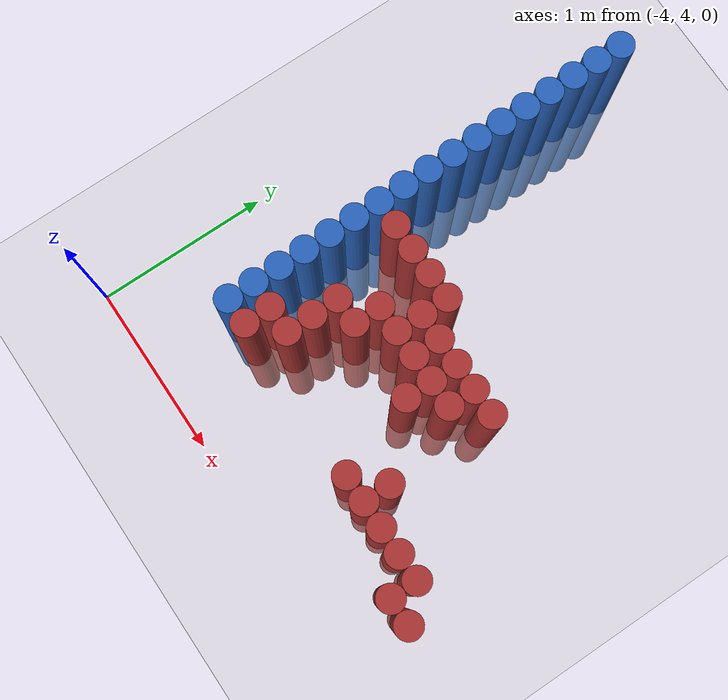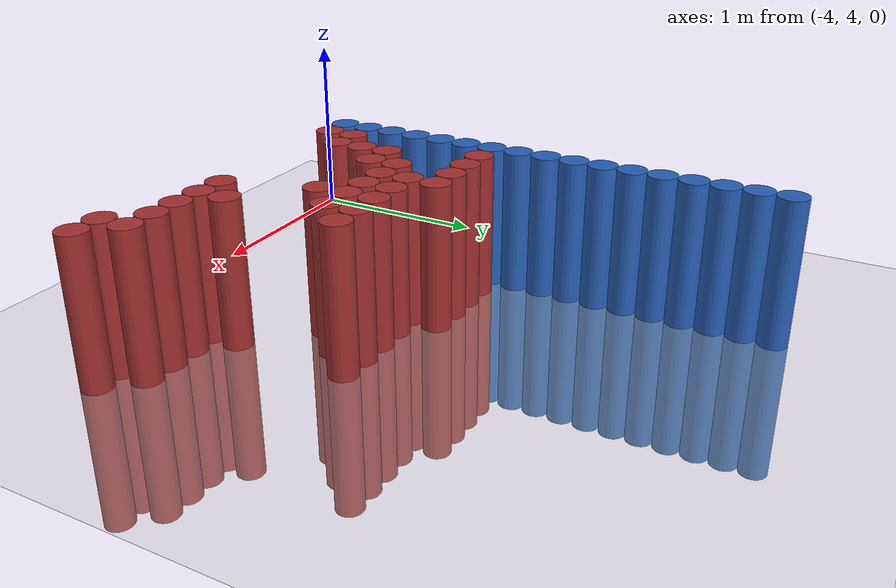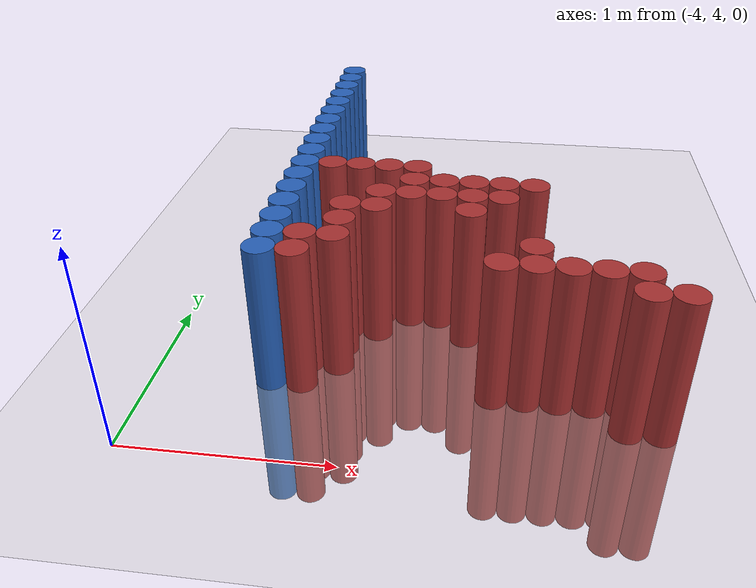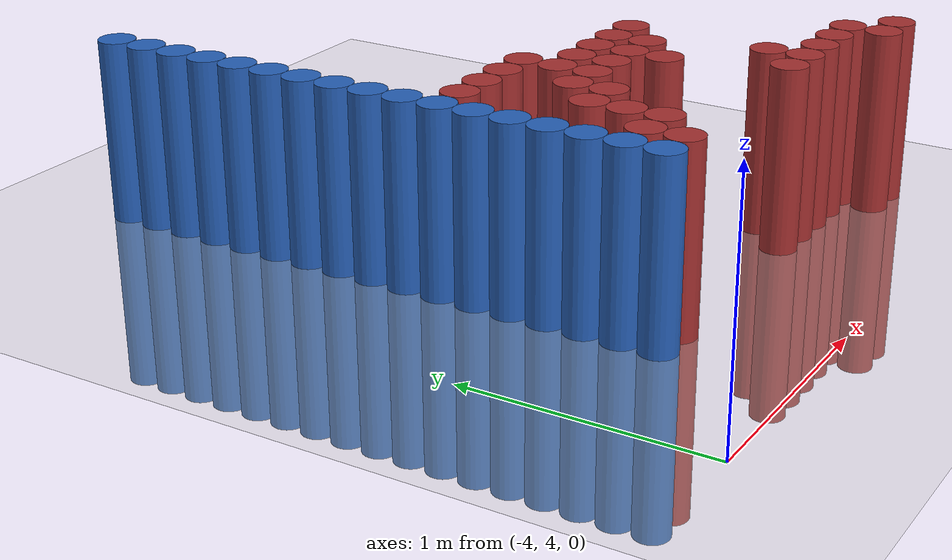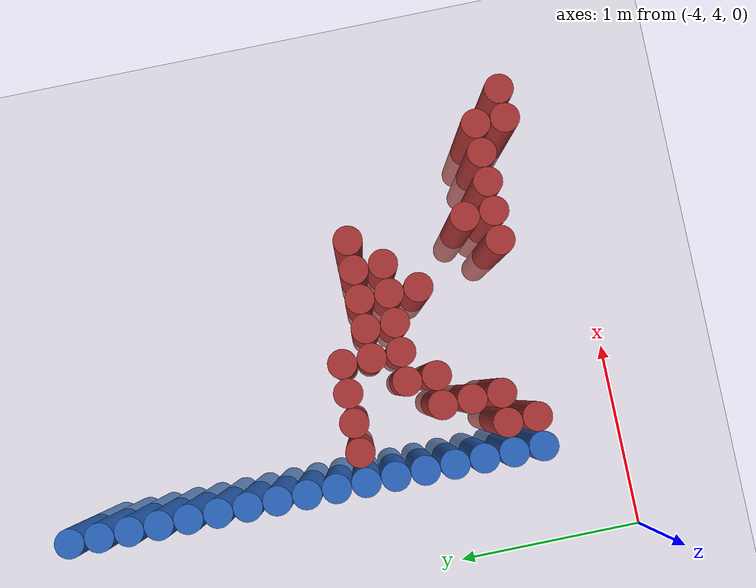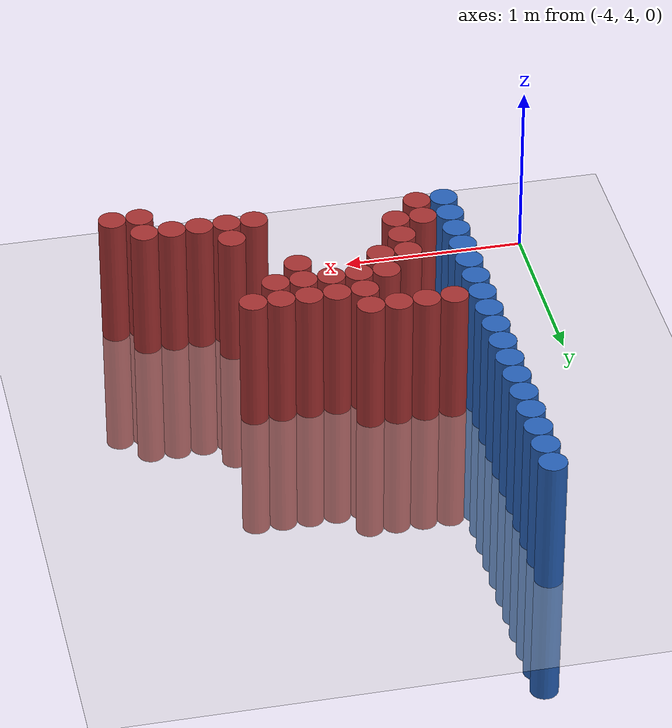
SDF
<sdf version="1.6">
 <world name="default">
  <model name="ground_plane">
   <static>1</static>
   <link name="link">
    <collision name="collision">
     <geometry><plane><normal>0 0 1</normal><size>100 100</size></plane></geometry>
     <surface><friction><ode><mu>100</mu><mu2>50</mu2></ode></friction></surface>
    </collision>
    <visual name="visual">
     <cast_shadows>0</cast_shadows>
     <geometry><plane><normal>0 0 1</normal><size>100 100</size></plane></geometry>
     <material>
      <script><uri>file://media/materials/scripts/gazebo.material</uri><name>Gazebo/Grey</name></script>
     </material>
    </visual>
   </link>
  </model>
  <model name="unit_cylinder_175">
   <static>1</static>
   <pose>-3.425000 4.525000 0.000000 0.000000 0.000000 0.000000</pose>
   <link name="link">
    <inertial>
     <mass>1</mass>
     <inertia><ixx>0.145833</ixx><ixy>0</ixy><ixz>0</ixz><iyy>0.145833</iyy><iyz>0</iyz><izz>0.125</izz></inertia>
    </inertial>
    <collision name="collision">
     <geometry><cylinder><radius>0.075000</radius><length>1.5</length></cylinder></geometry>
    </collision>
    <visual name="visual">
     <geometry><cylinder><radius>0.075000</radius><length>1.5</length></cylinder></geometry>
     <material>
      <ambient>0.152000 0.379000 0.720000 1</ambient>
      <diffuse>0.152000 0.379000 0.720000 1</diffuse>
     </material>
     <material>
      <script><name>Gazebo/Grey</name><uri>file://media/materials/scripts/gazebo.material</uri></script>
     </material>
    </visual>
   </link>
  </model>
  <model name="unit_cylinder_177">
   <static>1</static>
   <pose>-3.425000 4.675000 0.000000 0.000000 0.000000 0.000000</pose>
   <link name="link">
    <inertial>
     <mass>1</mass>
     <inertia><ixx>0.145833</ixx><ixy>0</ixy><ixz>0</ixz><iyy>0.145833</iyy><iyz>0</iyz><izz>0.125</izz></inertia>
    </inertial>
    <collision name="collision">
     <geometry><cylinder><radius>0.075000</radius><length>1.5</length></cylinder></geometry>
    </collision>
    <visual name="visual">
     <geometry><cylinder><radius>0.075000</radius><length>1.5</length></cylinder></geometry>
     <material>
      <ambient>0.152000 0.379000 0.720000 1</ambient>
      <diffuse>0.152000 0.379000 0.720000 1</diffuse>
     </material>
     <material>
      <script><name>Gazebo/Grey</name><uri>file://media/materials/scripts/gazebo.material</uri></script>
     </material>
    </visual>
   </link>
  </model>
  <model name="unit_cylinder_179">
   <static>1</static>
   <pose>-3.425000 4.825000 0.000000 0.000000 0.000000 0.000000</pose>
   <link name="link">
    <inertial>
     <mass>1</mass>
     <inertia><ixx>0.145833</ixx><ixy>0</ixy><ixz>0</ixz><iyy>0.145833</iyy><iyz>0</iyz><izz>0.125</izz></inertia>
    </inertial>
    <collision name="collision">
     <geometry><cylinder><radius>0.075000</radius><length>1.5</length></cylinder></geometry>
    </collision>
    <visual name="visual">
     <geometry><cylinder><radius>0.075000</radius><length>1.5</length></cylinder></geometry>
     <material>
      <ambient>0.152000 0.379000 0.720000 1</ambient>
      <diffuse>0.152000 0.379000 0.720000 1</diffuse>
     </material>
     <material>
      <script><name>Gazebo/Grey</name><uri>file://media/materials/scripts/gazebo.material</uri></script>
     </material>
    </visual>
   </link>
  </model>
  <model name="unit_cylinder_181">
   <static>1</static>
   <pose>-3.425000 4.975000 0.000000 0.000000 0.000000 0.000000</pose>
   <link name="link">
    <inertial>
     <mass>1</mass>
     <inertia><ixx>0.145833</ixx><ixy>0</ixy><ixz>0</ixz><iyy>0.145833</iyy><iyz>0</iyz><izz>0.125</izz></inertia>
    </inertial>
    <collision name="collision">
     <geometry><cylinder><radius>0.075000</radius><length>1.5</length></cylinder></geometry>
    </collision>
    <visual name="visual">
     <geometry><cylinder><radius>0.075000</radius><length>1.5</length></cylinder></geometry>
     <material>
      <ambient>0.152000 0.379000 0.720000 1</ambient>
      <diffuse>0.152000 0.379000 0.720000 1</diffuse>
     </material>
     <material>
      <script><name>Gazebo/Grey</name><uri>file://media/materials/scripts/gazebo.material</uri></script>
     </material>
    </visual>
   </link>
  </model>
  <model name="unit_cylinder_183">
   <static>1</static>
   <pose>-3.425000 5.125000 0.000000 0.000000 0.000000 0.000000</pose>
   <link name="link">
    <inertial>
     <mass>1</mass>
     <inertia><ixx>0.145833</ixx><ixy>0</ixy><ixz>0</ixz><iyy>0.145833</iyy><iyz>0</iyz><izz>0.125</izz></inertia>
    </inertial>
    <collision name="collision">
     <geometry><cylinder><radius>0.075000</radius><length>1.5</length></cylinder></geometry>
    </collision>
    <visual name="visual">
     <geometry><cylinder><radius>0.075000</radius><length>1.5</length></cylinder></geometry>
     <material>
      <ambient>0.152000 0.379000 0.720000 1</ambient>
      <diffuse>0.152000 0.379000 0.720000 1</diffuse>
     </material>
     <material>
      <script><name>Gazebo/Grey</name><uri>file://media/materials/scripts/gazebo.material</uri></script>
     </material>
    </visual>
   </link>
  </model>
  <model name="unit_cylinder_185">
   <static>1</static>
   <pose>-3.425000 5.275000 0.000000 0.000000 0.000000 0.000000</pose>
   <link name="link">
    <inertial>
     <mass>1</mass>
     <inertia><ixx>0.145833</ixx><ixy>0</ixy><ixz>0</ixz><iyy>0.145833</iyy><iyz>0</iyz><izz>0.125</izz></inertia>
    </inertial>
    <collision name="collision">
     <geometry><cylinder><radius>0.075000</radius><length>1.5</length></cylinder></geometry>
    </collision>
    <visual name="visual">
     <geometry><cylinder><radius>0.075000</radius><length>1.5</length></cylinder></geometry>
     <material>
      <ambient>0.152000 0.379000 0.720000 1</ambient>
      <diffuse>0.152000 0.379000 0.720000 1</diffuse>
     </material>
     <material>
      <script><name>Gazebo/Grey</name><uri>file://media/materials/scripts/gazebo.material</uri></script>
     </material>
    </visual>
   </link>
  </model>
  <model name="unit_cylinder_187">
   <static>1</static>
   <pose>-3.425000 5.425000 0.000000 0.000000 0.000000 0.000000</pose>
   <link name="link">
    <inertial>
     <mass>1</mass>
     <inertia><ixx>0.145833</ixx><ixy>0</ixy><ixz>0</ixz><iyy>0.145833</iyy><iyz>0</iyz><izz>0.125</izz></inertia>
    </inertial>
    <collision name="collision">
     <geometry><cylinder><radius>0.075000</radius><length>1.5</length></cylinder></geometry>
    </collision>
    <visual name="visual">
     <geometry><cylinder><radius>0.075000</radius><length>1.5</length></cylinder></geometry>
     <material>
      <ambient>0.152000 0.379000 0.720000 1</ambient>
      <diffuse>0.152000 0.379000 0.720000 1</diffuse>
     </material>
     <material>
      <script><name>Gazebo/Grey</name><uri>file://media/materials/scripts/gazebo.material</uri></script>
     </material>
    </visual>
   </link>
  </model>
  <model name="unit_cylinder_189">
   <static>1</static>
   <pose>-3.425000 5.575000 0.000000 0.000000 0.000000 0.000000</pose>
   <link name="link">
    <inertial>
     <mass>1</mass>
     <inertia><ixx>0.145833</ixx><ixy>0</ixy><ixz>0</ixz><iyy>0.145833</iyy><iyz>0</iyz><izz>0.125</izz></inertia>
    </inertial>
    <collision name="collision">
     <geometry><cylinder><radius>0.075000</radius><length>1.5</length></cylinder></geometry>
    </collision>
    <visual name="visual">
     <geometry><cylinder><radius>0.075000</radius><length>1.5</length></cylinder></geometry>
     <material>
      <ambient>0.152000 0.379000 0.720000 1</ambient>
      <diffuse>0.152000 0.379000 0.720000 1</diffuse>
     </material>
     <material>
      <script><name>Gazebo/Grey</name><uri>file://media/materials/scripts/gazebo.material</uri></script>
     </material>
    </visual>
   </link>
  </model>
  <model name="unit_cylinder_191">
   <static>1</static>
   <pose>-3.425000 5.725000 0.000000 0.000000 0.000000 0.000000</pose>
   <link name="link">
    <inertial>
     <mass>1</mass>
     <inertia><ixx>0.145833</ixx><ixy>0</ixy><ixz>0</ixz><iyy>0.145833</iyy><iyz>0</iyz><izz>0.125</izz></inertia>
    </inertial>
    <collision name="collision">
     <geometry><cylinder><radius>0.075000</radius><length>1.5</length></cylinder></geometry>
    </collision>
    <visual name="visual">
     <geometry><cylinder><radius>0.075000</radius><length>1.5</length></cylinder></geometry>
     <material>
      <ambient>0.152000 0.379000 0.720000 1</ambient>
      <diffuse>0.152000 0.379000 0.720000 1</diffuse>
     </material>
     <material>
      <script><name>Gazebo/Grey</name><uri>file://media/materials/scripts/gazebo.material</uri></script>
     </material>
    </visual>
   </link>
  </model>
  <model name="unit_cylinder_193">
   <static>1</static>
   <pose>-3.425000 5.875000 0.000000 0.000000 0.000000 0.000000</pose>
   <link name="link">
    <inertial>
     <mass>1</mass>
     <inertia><ixx>0.145833</ixx><ixy>0</ixy><ixz>0</ixz><iyy>0.145833</iyy><iyz>0</iyz><izz>0.125</izz></inertia>
    </inertial>
    <collision name="collision">
     <geometry><cylinder><radius>0.075000</radius><length>1.5</length></cylinder></geometry>
    </collision>
    <visual name="visual">
     <geometry><cylinder><radius>0.075000</radius><length>1.5</length></cylinder></geometry>
     <material>
      <ambient>0.152000 0.379000 0.720000 1</ambient>
      <diffuse>0.152000 0.379000 0.720000 1</diffuse>
     </material>
     <material>
      <script><name>Gazebo/Grey</name><uri>file://media/materials/scripts/gazebo.material</uri></script>
     </material>
    </visual>
   </link>
  </model>
  <model name="unit_cylinder_195">
   <static>1</static>
   <pose>-3.425000 6.025000 0.000000 0.000000 0.000000 0.000000</pose>
   <link name="link">
    <inertial>
     <mass>1</mass>
     <inertia><ixx>0.145833</ixx><ixy>0</ixy><ixz>0</ixz><iyy>0.145833</iyy><iyz>0</iyz><izz>0.125</izz></inertia>
    </inertial>
    <collision name="collision">
     <geometry><cylinder><radius>0.075000</radius><length>1.5</length></cylinder></geometry>
    </collision>
    <visual name="visual">
     <geometry><cylinder><radius>0.075000</radius><length>1.5</length></cylinder></geometry>
     <material>
      <ambient>0.152000 0.379000 0.720000 1</ambient>
      <diffuse>0.152000 0.379000 0.720000 1</diffuse>
     </material>
     <material>
      <script><name>Gazebo/Grey</name><uri>file://media/materials/scripts/gazebo.material</uri></script>
     </material>
    </visual>
   </link>
  </model>
  <model name="unit_cylinder_197">
   <static>1</static>
   <pose>-3.425000 6.175000 0.000000 0.000000 0.000000 0.000000</pose>
   <link name="link">
    <inertial>
     <mass>1</mass>
     <inertia><ixx>0.145833</ixx><ixy>0</ixy><ixz>0</ixz><iyy>0.145833</iyy><iyz>0</iyz><izz>0.125</izz></inertia>
    </inertial>
    <collision name="collision">
     <geometry><cylinder><radius>0.075000</radius><length>1.5</length></cylinder></geometry>
    </collision>
    <visual name="visual">
     <geometry><cylinder><radius>0.075000</radius><length>1.5</length></cylinder></geometry>
     <material>
      <ambient>0.152000 0.379000 0.720000 1</ambient>
      <diffuse>0.152000 0.379000 0.720000 1</diffuse>
     </material>
     <material>
      <script><name>Gazebo/Grey</name><uri>file://media/materials/scripts/gazebo.material</uri></script>
     </material>
    </visual>
   </link>
  </model>
  <model name="unit_cylinder_199">
   <static>1</static>
   <pose>-3.425000 6.325000 0.000000 0.000000 0.000000 0.000000</pose>
   <link name="link">
    <inertial>
     <mass>1</mass>
     <inertia><ixx>0.145833</ixx><ixy>0</ixy><ixz>0</ixz><iyy>0.145833</iyy><iyz>0</iyz><izz>0.125</izz></inertia>
    </inertial>
    <collision name="collision">
     <geometry><cylinder><radius>0.075000</radius><length>1.5</length></cylinder></geometry>
    </collision>
    <visual name="visual">
     <geometry><cylinder><radius>0.075000</radius><length>1.5</length></cylinder></geometry>
     <material>
      <ambient>0.152000 0.379000 0.720000 1</ambient>
      <diffuse>0.152000 0.379000 0.720000 1</diffuse>
     </material>
     <material>
      <script><name>Gazebo/Grey</name><uri>file://media/materials/scripts/gazebo.material</uri></script>
     </material>
    </visual>
   </link>
  </model>
  <model name="unit_cylinder_201">
   <static>1</static>
   <pose>-3.425000 6.475000 0.000000 0.000000 0.000000 0.000000</pose>
   <link name="link">
    <inertial>
     <mass>1</mass>
     <inertia><ixx>0.145833</ixx><ixy>0</ixy><ixz>0</ixz><iyy>0.145833</iyy><iyz>0</iyz><izz>0.125</izz></inertia>
    </inertial>
    <collision name="collision">
     <geometry><cylinder><radius>0.075000</radius><length>1.5</length></cylinder></geometry>
    </collision>
    <visual name="visual">
     <geometry><cylinder><radius>0.075000</radius><length>1.5</length></cylinder></geometry>
     <material>
      <ambient>0.152000 0.379000 0.720000 1</ambient>
      <diffuse>0.152000 0.379000 0.720000 1</diffuse>
     </material>
     <material>
      <script><name>Gazebo/Grey</name><uri>file://media/materials/scripts/gazebo.material</uri></script>
     </material>
    </visual>
   </link>
  </model>
  <model name="unit_cylinder_203">
   <static>1</static>
   <pose>-3.425000 6.625000 0.000000 0.000000 0.000000 0.000000</pose>
   <link name="link">
    <inertial>
     <mass>1</mass>
     <inertia><ixx>0.145833</ixx><ixy>0</ixy><ixz>0</ixz><iyy>0.145833</iyy><iyz>0</iyz><izz>0.125</izz></inertia>
    </inertial>
    <collision name="collision">
     <geometry><cylinder><radius>0.075000</radius><length>1.5</length></cylinder></geometry>
    </collision>
    <visual name="visual">
     <geometry><cylinder><radius>0.075000</radius><length>1.5</length></cylinder></geometry>
     <material>
      <ambient>0.152000 0.379000 0.720000 1</ambient>
      <diffuse>0.152000 0.379000 0.720000 1</diffuse>
     </material>
     <material>
      <script><name>Gazebo/Grey</name><uri>file://media/materials/scripts/gazebo.material</uri></script>
     </material>
    </visual>
   </link>
  </model>
  <model name="unit_cylinder_205">
   <static>1</static>
   <pose>-3.425000 6.775000 0.000000 0.000000 0.000000 0.000000</pose>
   <link name="link">
    <inertial>
     <mass>1</mass>
     <inertia><ixx>0.145833</ixx><ixy>0</ixy><ixz>0</ixz><iyy>0.145833</iyy><iyz>0</iyz><izz>0.125</izz></inertia>
    </inertial>
    <collision name="collision">
     <geometry><cylinder><radius>0.075000</radius><length>1.5</length></cylinder></geometry>
    </collision>
    <visual name="visual">
     <geometry><cylinder><radius>0.075000</radius><length>1.5</length></cylinder></geometry>
     <material>
      <ambient>0.152000 0.379000 0.720000 1</ambient>
      <diffuse>0.152000 0.379000 0.720000 1</diffuse>
     </material>
     <material>
      <script><name>Gazebo/Grey</name><uri>file://media/materials/scripts/gazebo.material</uri></script>
     </material>
    </visual>
   </link>
  </model>
  <model name="unit_cylinder_207">
   <static>1</static>
   <pose>-3.425000 6.925000 0.000000 0.000000 0.000000 0.000000</pose>
   <link name="link">
    <inertial>
     <mass>1</mass>
     <inertia><ixx>0.145833</ixx><ixy>0</ixy><ixz>0</ixz><iyy>0.145833</iyy><iyz>0</iyz><izz>0.125</izz></inertia>
    </inertial>
    <collision name="collision">
     <geometry><cylinder><radius>0.075000</radius><length>1.5</length></cylinder></geometry>
    </collision>
    <visual name="visual">
     <geometry><cylinder><radius>0.075000</radius><length>1.5</length></cylinder></geometry>
     <material>
      <ambient>0.152000 0.379000 0.720000 1</ambient>
      <diffuse>0.152000 0.379000 0.720000 1</diffuse>
     </material>
     <material>
      <script><name>Gazebo/Grey</name><uri>file://media/materials/scripts/gazebo.material</uri></script>
     </material>
    </visual>
   </link>
  </model>
  <model name="unit_cylinder_251">
   <static>1</static>
   <pose>-3.425000 4.525000 0.000000 0.000000 0.000000 0.000000</pose>
   <link name="link">
    <inertial>
     <mass>1</mass>
     <inertia><ixx>0.145833</ixx><ixy>0</ixy><ixz>0</ixz><iyy>0.145833</iyy><iyz>0</iyz><izz>0.125</izz></inertia>
    </inertial>
    <collision name="collision">
     <geometry><cylinder><radius>0.075000</radius><length>1.5</length></cylinder></geometry>
    </collision>
    <visual name="visual">
     <geometry><cylinder><radius>0.075000</radius><length>1.5</length></cylinder></geometry>
     <material>
      <ambient>0.152000 0.379000 0.720000 1</ambient>
      <diffuse>0.152000 0.379000 0.720000 1</diffuse>
     </material>
     <material>
      <script><name>Gazebo/Grey</name><uri>file://media/materials/scripts/gazebo.material</uri></script>
     </material>
    </visual>
   </link>
  </model>
  <model name="unit_cylinder_252">
   <static>1</static>
   <pose>-3.425000 4.675000 0.000000 0.000000 0.000000 0.000000</pose>
   <link name="link">
    <inertial>
     <mass>1</mass>
     <inertia><ixx>0.145833</ixx><ixy>0</ixy><ixz>0</ixz><iyy>0.145833</iyy><iyz>0</iyz><izz>0.125</izz></inertia>
    </inertial>
    <collision name="collision">
     <geometry><cylinder><radius>0.075000</radius><length>1.5</length></cylinder></geometry>
    </collision>
    <visual name="visual">
     <geometry><cylinder><radius>0.075000</radius><length>1.5</length></cylinder></geometry>
     <material>
      <ambient>0.152000 0.379000 0.720000 1</ambient>
      <diffuse>0.152000 0.379000 0.720000 1</diffuse>
     </material>
     <material>
      <script><name>Gazebo/Grey</name><uri>file://media/materials/scripts/gazebo.material</uri></script>
     </material>
    </visual>
   </link>
  </model>
  <model name="unit_cylinder_253">
   <static>1</static>
   <pose>-3.425000 4.825000 0.000000 0.000000 0.000000 0.000000</pose>
   <link name="link">
    <inertial>
     <mass>1</mass>
     <inertia><ixx>0.145833</ixx><ixy>0</ixy><ixz>0</ixz><iyy>0.145833</iyy><iyz>0</iyz><izz>0.125</izz></inertia>
    </inertial>
    <collision name="collision">
     <geometry><cylinder><radius>0.075000</radius><length>1.5</length></cylinder></geometry>
    </collision>
    <visual name="visual">
     <geometry><cylinder><radius>0.075000</radius><length>1.5</length></cylinder></geometry>
     <material>
      <ambient>0.152000 0.379000 0.720000 1</ambient>
      <diffuse>0.152000 0.379000 0.720000 1</diffuse>
     </material>
     <material>
      <script><name>Gazebo/Grey</name><uri>file://media/materials/scripts/gazebo.material</uri></script>
     </material>
    </visual>
   </link>
  </model>
  <model name="unit_cylinder_254">
   <static>1</static>
   <pose>-3.425000 4.975000 0.000000 0.000000 0.000000 0.000000</pose>
   <link name="link">
    <inertial>
     <mass>1</mass>
     <inertia><ixx>0.145833</ixx><ixy>0</ixy><ixz>0</ixz><iyy>0.145833</iyy><iyz>0</iyz><izz>0.125</izz></inertia>
    </inertial>
    <collision name="collision">
     <geometry><cylinder><radius>0.075000</radius><length>1.5</length></cylinder></geometry>
    </collision>
    <visual name="visual">
     <geometry><cylinder><radius>0.075000</radius><length>1.5</length></cylinder></geometry>
     <material>
      <ambient>0.152000 0.379000 0.720000 1</ambient>
      <diffuse>0.152000 0.379000 0.720000 1</diffuse>
     </material>
     <material>
      <script><name>Gazebo/Grey</name><uri>file://media/materials/scripts/gazebo.material</uri></script>
     </material>
    </visual>
   </link>
  </model>
  <model name="unit_cylinder_255">
   <static>1</static>
   <pose>-3.425000 5.125000 0.000000 0.000000 0.000000 0.000000</pose>
   <link name="link">
    <inertial>
     <mass>1</mass>
     <inertia><ixx>0.145833</ixx><ixy>0</ixy><ixz>0</ixz><iyy>0.145833</iyy><iyz>0</iyz><izz>0.125</izz></inertia>
    </inertial>
    <collision name="collision">
     <geometry><cylinder><radius>0.075000</radius><length>1.5</length></cylinder></geometry>
    </collision>
    <visual name="visual">
     <geometry><cylinder><radius>0.075000</radius><length>1.5</length></cylinder></geometry>
     <material>
      <ambient>0.152000 0.379000 0.720000 1</ambient>
      <diffuse>0.152000 0.379000 0.720000 1</diffuse>
     </material>
     <material>
      <script><name>Gazebo/Grey</name><uri>file://media/materials/scripts/gazebo.material</uri></script>
     </material>
    </visual>
   </link>
  </model>
  <model name="unit_cylinder_256">
   <static>1</static>
   <pose>-3.425000 5.275000 0.000000 0.000000 0.000000 0.000000</pose>
   <link name="link">
    <inertial>
     <mass>1</mass>
     <inertia><ixx>0.145833</ixx><ixy>0</ixy><ixz>0</ixz><iyy>0.145833</iyy><iyz>0</iyz><izz>0.125</izz></inertia>
    </inertial>
    <collision name="collision">
     <geometry><cylinder><radius>0.075000</radius><length>1.5</length></cylinder></geometry>
    </collision>
    <visual name="visual">
     <geometry><cylinder><radius>0.075000</radius><length>1.5</length></cylinder></geometry>
     <material>
      <ambient>0.152000 0.379000 0.720000 1</ambient>
      <diffuse>0.152000 0.379000 0.720000 1</diffuse>
     </material>
     <material>
      <script><name>Gazebo/Grey</name><uri>file://media/materials/scripts/gazebo.material</uri></script>
     </material>
    </visual>
   </link>
  </model>
  <model name="unit_cylinder_257">
   <static>1</static>
   <pose>-3.425000 5.425000 0.000000 0.000000 0.000000 0.000000</pose>
   <link name="link">
    <inertial>
     <mass>1</mass>
     <inertia><ixx>0.145833</ixx><ixy>0</ixy><ixz>0</ixz><iyy>0.145833</iyy><iyz>0</iyz><izz>0.125</izz></inertia>
    </inertial>
    <collision name="collision">
     <geometry><cylinder><radius>0.075000</radius><length>1.5</length></cylinder></geometry>
    </collision>
    <visual name="visual">
     <geometry><cylinder><radius>0.075000</radius><length>1.5</length></cylinder></geometry>
     <material>
      <ambient>0.152000 0.379000 0.720000 1</ambient>
      <diffuse>0.152000 0.379000 0.720000 1</diffuse>
     </material>
     <material>
      <script><name>Gazebo/Grey</name><uri>file://media/materials/scripts/gazebo.material</uri></script>
     </material>
    </visual>
   </link>
  </model>
  <model name="unit_cylinder_275">
   <static>1</static>
   <pose>-3.275000 4.525000 0.000000 0.000000 0.000000 0.000000</pose>
   <link name="link">
    <inertial>
     <mass>1</mass>
     <inertia><ixx>0.145833</ixx><ixy>0</ixy><ixz>0</ixz><iyy>0.145833</iyy><iyz>0</iyz><izz>0.125</izz></inertia>
    </inertial>
    <collision name="collision">
     <geometry><cylinder><radius>0.075000</radius><length>1.5</length></cylinder></geometry>
    </collision>
    <visual name="visual">
     <geometry><cylinder><radius>0.075000</radius><length>1.5</length></cylinder></geometry>
     <material>
      <ambient>0.648000 0.192000 0.192000 1</ambient>
      <diffuse>0.648000 0.192000 0.192000 1</diffuse>
     </material>
     <material>
      <script><name>Gazebo/Grey</name><uri>file://media/materials/scripts/gazebo.material</uri></script>
     </material>
    </visual>
   </link>
  </model>
  <model name="unit_cylinder_276">
   <static>1</static>
   <pose>-3.275000 4.675000 0.000000 0.000000 0.000000 0.000000</pose>
   <link name="link">
    <inertial>
     <mass>1</mass>
     <inertia><ixx>0.145833</ixx><ixy>0</ixy><ixz>0</ixz><iyy>0.145833</iyy><iyz>0</iyz><izz>0.125</izz></inertia>
    </inertial>
    <collision name="collision">
     <geometry><cylinder><radius>0.075000</radius><length>1.5</length></cylinder></geometry>
    </collision>
    <visual name="visual">
     <geometry><cylinder><radius>0.075000</radius><length>1.5</length></cylinder></geometry>
     <material>
      <ambient>0.648000 0.192000 0.192000 1</ambient>
      <diffuse>0.648000 0.192000 0.192000 1</diffuse>
     </material>
     <material>
      <script><name>Gazebo/Grey</name><uri>file://media/materials/scripts/gazebo.material</uri></script>
     </material>
    </visual>
   </link>
  </model>
  <model name="unit_cylinder_277">
   <static>1</static>
   <pose>-3.275000 5.425000 0.000000 0.000000 0.000000 0.000000</pose>
   <link name="link">
    <inertial>
     <mass>1</mass>
     <inertia><ixx>0.145833</ixx><ixy>0</ixy><ixz>0</ixz><iyy>0.145833</iyy><iyz>0</iyz><izz>0.125</izz></inertia>
    </inertial>
    <collision name="collision">
     <geometry><cylinder><radius>0.075000</radius><length>1.5</length></cylinder></geometry>
    </collision>
    <visual name="visual">
     <geometry><cylinder><radius>0.075000</radius><length>1.5</length></cylinder></geometry>
     <material>
      <ambient>0.648000 0.192000 0.192000 1</ambient>
      <diffuse>0.648000 0.192000 0.192000 1</diffuse>
     </material>
     <material>
      <script><name>Gazebo/Grey</name><uri>file://media/materials/scripts/gazebo.material</uri></script>
     </material>
    </visual>
   </link>
  </model>
  <model name="unit_cylinder_287">
   <static>1</static>
   <pose>-3.125000 4.675000 0.000000 0.000000 0.000000 0.000000</pose>
   <link name="link">
    <inertial>
     <mass>1</mass>
     <inertia><ixx>0.145833</ixx><ixy>0</ixy><ixz>0</ixz><iyy>0.145833</iyy><iyz>0</iyz><izz>0.125</izz></inertia>
    </inertial>
    <collision name="collision">
     <geometry><cylinder><radius>0.075000</radius><length>1.5</length></cylinder></geometry>
    </collision>
    <visual name="visual">
     <geometry><cylinder><radius>0.075000</radius><length>1.5</length></cylinder></geometry>
     <material>
      <ambient>0.648000 0.192000 0.192000 1</ambient>
      <diffuse>0.648000 0.192000 0.192000 1</diffuse>
     </material>
     <material>
      <script><name>Gazebo/Grey</name><uri>file://media/materials/scripts/gazebo.material</uri></script>
     </material>
    </visual>
   </link>
  </model>
  <model name="unit_cylinder_288">
   <static>1</static>
   <pose>-3.125000 4.825000 0.000000 0.000000 0.000000 0.000000</pose>
   <link name="link">
    <inertial>
     <mass>1</mass>
     <inertia><ixx>0.145833</ixx><ixy>0</ixy><ixz>0</ixz><iyy>0.145833</iyy><iyz>0</iyz><izz>0.125</izz></inertia>
    </inertial>
    <collision name="collision">
     <geometry><cylinder><radius>0.075000</radius><length>1.5</length></cylinder></geometry>
    </collision>
    <visual name="visual">
     <geometry><cylinder><radius>0.075000</radius><length>1.5</length></cylinder></geometry>
     <material>
      <ambient>0.648000 0.192000 0.192000 1</ambient>
      <diffuse>0.648000 0.192000 0.192000 1</diffuse>
     </material>
     <material>
      <script><name>Gazebo/Grey</name><uri>file://media/materials/scripts/gazebo.material</uri></script>
     </material>
    </visual>
   </link>
  </model>
  <model name="unit_cylinder_289">
   <static>1</static>
   <pose>-3.125000 4.975000 0.000000 0.000000 0.000000 0.000000</pose>
   <link name="link">
    <inertial>
     <mass>1</mass>
     <inertia><ixx>0.145833</ixx><ixy>0</ixy><ixz>0</ixz><iyy>0.145833</iyy><iyz>0</iyz><izz>0.125</izz></inertia>
    </inertial>
    <collision name="collision">
     <geometry><cylinder><radius>0.075000</radius><length>1.5</length></cylinder></geometry>
    </collision>
    <visual name="visual">
     <geometry><cylinder><radius>0.075000</radius><length>1.5</length></cylinder></geometry>
     <material>
      <ambient>0.648000 0.192000 0.192000 1</ambient>
      <diffuse>0.648000 0.192000 0.192000 1</diffuse>
     </material>
     <material>
      <script><name>Gazebo/Grey</name><uri>file://media/materials/scripts/gazebo.material</uri></script>
     </material>
    </visual>
   </link>
  </model>
  <model name="unit_cylinder_290">
   <static>1</static>
   <pose>-3.125000 5.425000 0.000000 0.000000 0.000000 0.000000</pose>
   <link name="link">
    <inertial>
     <mass>1</mass>
     <inertia><ixx>0.145833</ixx><ixy>0</ixy><ixz>0</ixz><iyy>0.145833</iyy><iyz>0</iyz><izz>0.125</izz></inertia>
    </inertial>
    <collision name="collision">
     <geometry><cylinder><radius>0.075000</radius><length>1.5</length></cylinder></geometry>
    </collision>
    <visual name="visual">
     <geometry><cylinder><radius>0.075000</radius><length>1.5</length></cylinder></geometry>
     <material>
      <ambient>0.648000 0.192000 0.192000 1</ambient>
      <diffuse>0.648000 0.192000 0.192000 1</diffuse>
     </material>
     <material>
      <script><name>Gazebo/Grey</name><uri>file://media/materials/scripts/gazebo.material</uri></script>
     </material>
    </visual>
   </link>
  </model>
  <model name="unit_cylinder_303">
   <static>1</static>
   <pose>-2.975000 4.975000 0.000000 0.000000 0.000000 0.000000</pose>
   <link name="link">
    <inertial>
     <mass>1</mass>
     <inertia><ixx>0.145833</ixx><ixy>0</ixy><ixz>0</ixz><iyy>0.145833</iyy><iyz>0</iyz><izz>0.125</izz></inertia>
    </inertial>
    <collision name="collision">
     <geometry><cylinder><radius>0.075000</radius><length>1.5</length></cylinder></geometry>
    </collision>
    <visual name="visual">
     <geometry><cylinder><radius>0.075000</radius><length>1.5</length></cylinder></geometry>
     <material>
      <ambient>0.648000 0.192000 0.192000 1</ambient>
      <diffuse>0.648000 0.192000 0.192000 1</diffuse>
     </material>
     <material>
      <script><name>Gazebo/Grey</name><uri>file://media/materials/scripts/gazebo.material</uri></script>
     </material>
    </visual>
   </link>
  </model>
  <model name="unit_cylinder_304">
   <static>1</static>
   <pose>-2.975000 5.125000 0.000000 0.000000 0.000000 0.000000</pose>
   <link name="link">
    <inertial>
     <mass>1</mass>
     <inertia><ixx>0.145833</ixx><ixy>0</ixy><ixz>0</ixz><iyy>0.145833</iyy><iyz>0</iyz><izz>0.125</izz></inertia>
    </inertial>
    <collision name="collision">
     <geometry><cylinder><radius>0.075000</radius><length>1.5</length></cylinder></geometry>
    </collision>
    <visual name="visual">
     <geometry><cylinder><radius>0.075000</radius><length>1.5</length></cylinder></geometry>
     <material>
      <ambient>0.648000 0.192000 0.192000 1</ambient>
      <diffuse>0.648000 0.192000 0.192000 1</diffuse>
     </material>
     <material>
      <script><name>Gazebo/Grey</name><uri>file://media/materials/scripts/gazebo.material</uri></script>
     </material>
    </visual>
   </link>
  </model>
  <model name="unit_cylinder_305">
   <static>1</static>
   <pose>-2.975000 5.425000 0.000000 0.000000 0.000000 0.000000</pose>
   <link name="link">
    <inertial>
     <mass>1</mass>
     <inertia><ixx>0.145833</ixx><ixy>0</ixy><ixz>0</ixz><iyy>0.145833</iyy><iyz>0</iyz><izz>0.125</izz></inertia>
    </inertial>
    <collision name="collision">
     <geometry><cylinder><radius>0.075000</radius><length>1.5</length></cylinder></geometry>
    </collision>
    <visual name="visual">
     <geometry><cylinder><radius>0.075000</radius><length>1.5</length></cylinder></geometry>
     <material>
      <ambient>0.648000 0.192000 0.192000 1</ambient>
      <diffuse>0.648000 0.192000 0.192000 1</diffuse>
     </material>
     <material>
      <script><name>Gazebo/Grey</name><uri>file://media/materials/scripts/gazebo.material</uri></script>
     </material>
    </visual>
   </link>
  </model>
  <model name="unit_cylinder_319">
   <static>1</static>
   <pose>-2.825000 5.125000 0.000000 0.000000 0.000000 0.000000</pose>
   <link name="link">
    <inertial>
     <mass>1</mass>
     <inertia><ixx>0.145833</ixx><ixy>0</ixy><ixz>0</ixz><iyy>0.145833</iyy><iyz>0</iyz><izz>0.125</izz></inertia>
    </inertial>
    <collision name="collision">
     <geometry><cylinder><radius>0.075000</radius><length>1.5</length></cylinder></geometry>
    </collision>
    <visual name="visual">
     <geometry><cylinder><radius>0.075000</radius><length>1.5</length></cylinder></geometry>
     <material>
      <ambient>0.648000 0.192000 0.192000 1</ambient>
      <diffuse>0.648000 0.192000 0.192000 1</diffuse>
     </material>
     <material>
      <script><name>Gazebo/Grey</name><uri>file://media/materials/scripts/gazebo.material</uri></script>
     </material>
    </visual>
   </link>
  </model>
  <model name="unit_cylinder_320">
   <static>1</static>
   <pose>-2.825000 5.275000 0.000000 0.000000 0.000000 0.000000</pose>
   <link name="link">
    <inertial>
     <mass>1</mass>
     <inertia><ixx>0.145833</ixx><ixy>0</ixy><ixz>0</ixz><iyy>0.145833</iyy><iyz>0</iyz><izz>0.125</izz></inertia>
    </inertial>
    <collision name="collision">
     <geometry><cylinder><radius>0.075000</radius><length>1.5</length></cylinder></geometry>
    </collision>
    <visual name="visual">
     <geometry><cylinder><radius>0.075000</radius><length>1.5</length></cylinder></geometry>
     <material>
      <ambient>0.648000 0.192000 0.192000 1</ambient>
      <diffuse>0.648000 0.192000 0.192000 1</diffuse>
     </material>
     <material>
      <script><name>Gazebo/Grey</name><uri>file://media/materials/scripts/gazebo.material</uri></script>
     </material>
    </visual>
   </link>
  </model>
  <model name="unit_cylinder_321">
   <static>1</static>
   <pose>-2.825000 5.425000 0.000000 0.000000 0.000000 0.000000</pose>
   <link name="link">
    <inertial>
     <mass>1</mass>
     <inertia><ixx>0.145833</ixx><ixy>0</ixy><ixz>0</ixz><iyy>0.145833</iyy><iyz>0</iyz><izz>0.125</izz></inertia>
    </inertial>
    <collision name="collision">
     <geometry><cylinder><radius>0.075000</radius><length>1.5</length></cylinder></geometry>
    </collision>
    <visual name="visual">
     <geometry><cylinder><radius>0.075000</radius><length>1.5</length></cylinder></geometry>
     <material>
      <ambient>0.648000 0.192000 0.192000 1</ambient>
      <diffuse>0.648000 0.192000 0.192000 1</diffuse>
     </material>
     <material>
      <script><name>Gazebo/Grey</name><uri>file://media/materials/scripts/gazebo.material</uri></script>
     </material>
    </visual>
   </link>
  </model>
  <model name="unit_cylinder_331">
   <static>1</static>
   <pose>-2.675000 5.125000 0.000000 0.000000 0.000000 0.000000</pose>
   <link name="link">
    <inertial>
     <mass>1</mass>
     <inertia><ixx>0.145833</ixx><ixy>0</ixy><ixz>0</ixz><iyy>0.145833</iyy><iyz>0</iyz><izz>0.125</izz></inertia>
    </inertial>
    <collision name="collision">
     <geometry><cylinder><radius>0.075000</radius><length>1.5</length></cylinder></geometry>
    </collision>
    <visual name="visual">
     <geometry><cylinder><radius>0.075000</radius><length>1.5</length></cylinder></geometry>
     <material>
      <ambient>0.648000 0.192000 0.192000 1</ambient>
      <diffuse>0.648000 0.192000 0.192000 1</diffuse>
     </material>
     <material>
      <script><name>Gazebo/Grey</name><uri>file://media/materials/scripts/gazebo.material</uri></script>
     </material>
    </visual>
   </link>
  </model>
  <model name="unit_cylinder_332">
   <static>1</static>
   <pose>-2.675000 5.275000 0.000000 0.000000 0.000000 0.000000</pose>
   <link name="link">
    <inertial>
     <mass>1</mass>
     <inertia><ixx>0.145833</ixx><ixy>0</ixy><ixz>0</ixz><iyy>0.145833</iyy><iyz>0</iyz><izz>0.125</izz></inertia>
    </inertial>
    <collision name="collision">
     <geometry><cylinder><radius>0.075000</radius><length>1.5</length></cylinder></geometry>
    </collision>
    <visual name="visual">
     <geometry><cylinder><radius>0.075000</radius><length>1.5</length></cylinder></geometry>
     <material>
      <ambient>0.648000 0.192000 0.192000 1</ambient>
      <diffuse>0.648000 0.192000 0.192000 1</diffuse>
     </material>
     <material>
      <script><name>Gazebo/Grey</name><uri>file://media/materials/scripts/gazebo.material</uri></script>
     </material>
    </visual>
   </link>
  </model>
  <model name="unit_cylinder_337">
   <static>1</static>
   <pose>-2.525000 4.975000 0.000000 0.000000 0.000000 0.000000</pose>
   <link name="link">
    <inertial>
     <mass>1</mass>
     <inertia><ixx>0.145833</ixx><ixy>0</ixy><ixz>0</ixz><iyy>0.145833</iyy><iyz>0</iyz><izz>0.125</izz></inertia>
    </inertial>
    <collision name="collision">
     <geometry><cylinder><radius>0.075000</radius><length>1.5</length></cylinder></geometry>
    </collision>
    <visual name="visual">
     <geometry><cylinder><radius>0.075000</radius><length>1.5</length></cylinder></geometry>
     <material>
      <ambient>0.648000 0.192000 0.192000 1</ambient>
      <diffuse>0.648000 0.192000 0.192000 1</diffuse>
     </material>
     <material>
      <script><name>Gazebo/Grey</name><uri>file://media/materials/scripts/gazebo.material</uri></script>
     </material>
    </visual>
   </link>
  </model>
  <model name="unit_cylinder_338">
   <static>1</static>
   <pose>-2.525000 5.125000 0.000000 0.000000 0.000000 0.000000</pose>
   <link name="link">
    <inertial>
     <mass>1</mass>
     <inertia><ixx>0.145833</ixx><ixy>0</ixy><ixz>0</ixz><iyy>0.145833</iyy><iyz>0</iyz><izz>0.125</izz></inertia>
    </inertial>
    <collision name="collision">
     <geometry><cylinder><radius>0.075000</radius><length>1.5</length></cylinder></geometry>
    </collision>
    <visual name="visual">
     <geometry><cylinder><radius>0.075000</radius><length>1.5</length></cylinder></geometry>
     <material>
      <ambient>0.648000 0.192000 0.192000 1</ambient>
      <diffuse>0.648000 0.192000 0.192000 1</diffuse>
     </material>
     <material>
      <script><name>Gazebo/Grey</name><uri>file://media/materials/scripts/gazebo.material</uri></script>
     </material>
    </visual>
   </link>
  </model>
  <model name="unit_cylinder_339">
   <static>1</static>
   <pose>-2.525000 5.275000 0.000000 0.000000 0.000000 0.000000</pose>
   <link name="link">
    <inertial>
     <mass>1</mass>
     <inertia><ixx>0.145833</ixx><ixy>0</ixy><ixz>0</ixz><iyy>0.145833</iyy><iyz>0</iyz><izz>0.125</izz></inertia>
    </inertial>
    <collision name="collision">
     <geometry><cylinder><radius>0.075000</radius><length>1.5</length></cylinder></geometry>
    </collision>
    <visual name="visual">
     <geometry><cylinder><radius>0.075000</radius><length>1.5</length></cylinder></geometry>
     <material>
      <ambient>0.648000 0.192000 0.192000 1</ambient>
      <diffuse>0.648000 0.192000 0.192000 1</diffuse>
     </material>
     <material>
      <script><name>Gazebo/Grey</name><uri>file://media/materials/scripts/gazebo.material</uri></script>
     </material>
    </visual>
   </link>
  </model>
  <model name="unit_cylinder_345">
   <static>1</static>
   <pose>-2.375000 4.525000 0.000000 0.000000 0.000000 0.000000</pose>
   <link name="link">
    <inertial>
     <mass>1</mass>
     <inertia><ixx>0.145833</ixx><ixy>0</ixy><ixz>0</ixz><iyy>0.145833</iyy><iyz>0</iyz><izz>0.125</izz></inertia>
    </inertial>
    <collision name="collision">
     <geometry><cylinder><radius>0.075000</radius><length>1.5</length></cylinder></geometry>
    </collision>
    <visual name="visual">
     <geometry><cylinder><radius>0.075000</radius><length>1.5</length></cylinder></geometry>
     <material>
      <ambient>0.648000 0.192000 0.192000 1</ambient>
      <diffuse>0.648000 0.192000 0.192000 1</diffuse>
     </material>
     <material>
      <script><name>Gazebo/Grey</name><uri>file://media/materials/scripts/gazebo.material</uri></script>
     </material>
    </visual>
   </link>
  </model>
  <model name="unit_cylinder_346">
   <static>1</static>
   <pose>-2.375000 5.125000 0.000000 0.000000 0.000000 0.000000</pose>
   <link name="link">
    <inertial>
     <mass>1</mass>
     <inertia><ixx>0.145833</ixx><ixy>0</ixy><ixz>0</ixz><iyy>0.145833</iyy><iyz>0</iyz><izz>0.125</izz></inertia>
    </inertial>
    <collision name="collision">
     <geometry><cylinder><radius>0.075000</radius><length>1.5</length></cylinder></geometry>
    </collision>
    <visual name="visual">
     <geometry><cylinder><radius>0.075000</radius><length>1.5</length></cylinder></geometry>
     <material>
      <ambient>0.648000 0.192000 0.192000 1</ambient>
      <diffuse>0.648000 0.192000 0.192000 1</diffuse>
     </material>
     <material>
      <script><name>Gazebo/Grey</name><uri>file://media/materials/scripts/gazebo.material</uri></script>
     </material>
    </visual>
   </link>
  </model>
  <model name="unit_cylinder_347">
   <static>1</static>
   <pose>-2.375000 5.275000 0.000000 0.000000 0.000000 0.000000</pose>
   <link name="link">
    <inertial>
     <mass>1</mass>
     <inertia><ixx>0.145833</ixx><ixy>0</ixy><ixz>0</ixz><iyy>0.145833</iyy><iyz>0</iyz><izz>0.125</izz></inertia>
    </inertial>
    <collision name="collision">
     <geometry><cylinder><radius>0.075000</radius><length>1.5</length></cylinder></geometry>
    </collision>
    <visual name="visual">
     <geometry><cylinder><radius>0.075000</radius><length>1.5</length></cylinder></geometry>
     <material>
      <ambient>0.648000 0.192000 0.192000 1</ambient>
      <diffuse>0.648000 0.192000 0.192000 1</diffuse>
     </material>
     <material>
      <script><name>Gazebo/Grey</name><uri>file://media/materials/scripts/gazebo.material</uri></script>
     </material>
    </visual>
   </link>
  </model>
  <model name="unit_cylinder_357">
   <static>1</static>
   <pose>-2.225000 4.525000 0.000000 0.000000 0.000000 0.000000</pose>
   <link name="link">
    <inertial>
     <mass>1</mass>
     <inertia><ixx>0.145833</ixx><ixy>0</ixy><ixz>0</ixz><iyy>0.145833</iyy><iyz>0</iyz><izz>0.125</izz></inertia>
    </inertial>
    <collision name="collision">
     <geometry><cylinder><radius>0.075000</radius><length>1.5</length></cylinder></geometry>
    </collision>
    <visual name="visual">
     <geometry><cylinder><radius>0.075000</radius><length>1.5</length></cylinder></geometry>
     <material>
      <ambient>0.648000 0.192000 0.192000 1</ambient>
      <diffuse>0.648000 0.192000 0.192000 1</diffuse>
     </material>
     <material>
      <script><name>Gazebo/Grey</name><uri>file://media/materials/scripts/gazebo.material</uri></script>
     </material>
    </visual>
   </link>
  </model>
  <model name="unit_cylinder_358">
   <static>1</static>
   <pose>-2.225000 4.675000 0.000000 0.000000 0.000000 0.000000</pose>
   <link name="link">
    <inertial>
     <mass>1</mass>
     <inertia><ixx>0.145833</ixx><ixy>0</ixy><ixz>0</ixz><iyy>0.145833</iyy><iyz>0</iyz><izz>0.125</izz></inertia>
    </inertial>
    <collision name="collision">
     <geometry><cylinder><radius>0.075000</radius><length>1.5</length></cylinder></geometry>
    </collision>
    <visual name="visual">
     <geometry><cylinder><radius>0.075000</radius><length>1.5</length></cylinder></geometry>
     <material>
      <ambient>0.648000 0.192000 0.192000 1</ambient>
      <diffuse>0.648000 0.192000 0.192000 1</diffuse>
     </material>
     <material>
      <script><name>Gazebo/Grey</name><uri>file://media/materials/scripts/gazebo.material</uri></script>
     </material>
    </visual>
   </link>
  </model>
  <model name="unit_cylinder_359">
   <static>1</static>
   <pose>-2.225000 5.275000 0.000000 0.000000 0.000000 0.000000</pose>
   <link name="link">
    <inertial>
     <mass>1</mass>
     <inertia><ixx>0.145833</ixx><ixy>0</ixy><ixz>0</ixz><iyy>0.145833</iyy><iyz>0</iyz><izz>0.125</izz></inertia>
    </inertial>
    <collision name="collision">
     <geometry><cylinder><radius>0.075000</radius><length>1.5</length></cylinder></geometry>
    </collision>
    <visual name="visual">
     <geometry><cylinder><radius>0.075000</radius><length>1.5</length></cylinder></geometry>
     <material>
      <ambient>0.648000 0.192000 0.192000 1</ambient>
      <diffuse>0.648000 0.192000 0.192000 1</diffuse>
     </material>
     <material>
      <script><name>Gazebo/Grey</name><uri>file://media/materials/scripts/gazebo.material</uri></script>
     </material>
    </visual>
   </link>
  </model>
  <model name="unit_cylinder_369">
   <static>1</static>
   <pose>-2.075000 4.525000 0.000000 0.000000 0.000000 0.000000</pose>
   <link name="link">
    <inertial>
     <mass>1</mass>
     <inertia><ixx>0.145833</ixx><ixy>0</ixy><ixz>0</ixz><iyy>0.145833</iyy><iyz>0</iyz><izz>0.125</izz></inertia>
    </inertial>
    <collision name="collision">
     <geometry><cylinder><radius>0.075000</radius><length>1.5</length></cylinder></geometry>
    </collision>
    <visual name="visual">
     <geometry><cylinder><radius>0.075000</radius><length>1.5</length></cylinder></geometry>
     <material>
      <ambient>0.648000 0.192000 0.192000 1</ambient>
      <diffuse>0.648000 0.192000 0.192000 1</diffuse>
     </material>
     <material>
      <script><name>Gazebo/Grey</name><uri>file://media/materials/scripts/gazebo.material</uri></script>
     </material>
    </visual>
   </link>
  </model>
  <model name="unit_cylinder_380">
   <static>1</static>
   <pose>-1.925000 4.525000 0.000000 0.000000 0.000000 0.000000</pose>
   <link name="link">
    <inertial>
     <mass>1</mass>
     <inertia><ixx>0.145833</ixx><ixy>0</ixy><ixz>0</ixz><iyy>0.145833</iyy><iyz>0</iyz><izz>0.125</izz></inertia>
    </inertial>
    <collision name="collision">
     <geometry><cylinder><radius>0.075000</radius><length>1.5</length></cylinder></geometry>
    </collision>
    <visual name="visual">
     <geometry><cylinder><radius>0.075000</radius><length>1.5</length></cylinder></geometry>
     <material>
      <ambient>0.648000 0.192000 0.192000 1</ambient>
      <diffuse>0.648000 0.192000 0.192000 1</diffuse>
     </material>
     <material>
      <script><name>Gazebo/Grey</name><uri>file://media/materials/scripts/gazebo.material</uri></script>
     </material>
    </visual>
   </link>
  </model>
  <model name="unit_cylinder_389">
   <static>1</static>
   <pose>-1.775000 4.375000 0.000000 0.000000 0.000000 0.000000</pose>
   <link name="link">
    <inertial>
     <mass>1</mass>
     <inertia><ixx>0.145833</ixx><ixy>0</ixy><ixz>0</ixz><iyy>0.145833</iyy><iyz>0</iyz><izz>0.125</izz></inertia>
    </inertial>
    <collision name="collision">
     <geometry><cylinder><radius>0.075000</radius><length>1.5</length></cylinder></geometry>
    </collision>
    <visual name="visual">
     <geometry><cylinder><radius>0.075000</radius><length>1.5</length></cylinder></geometry>
     <material>
      <ambient>0.648000 0.192000 0.192000 1</ambient>
      <diffuse>0.648000 0.192000 0.192000 1</diffuse>
     </material>
     <material>
      <script><name>Gazebo/Grey</name><uri>file://media/materials/scripts/gazebo.material</uri></script>
     </material>
    </visual>
   </link>
  </model>
  <model name="unit_cylinder_390">
   <static>1</static>
   <pose>-1.775000 4.525000 0.000000 0.000000 0.000000 0.000000</pose>
   <link name="link">
    <inertial>
     <mass>1</mass>
     <inertia><ixx>0.145833</ixx><ixy>0</ixy><ixz>0</ixz><iyy>0.145833</iyy><iyz>0</iyz><izz>0.125</izz></inertia>
    </inertial>
    <collision name="collision">
     <geometry><cylinder><radius>0.075000</radius><length>1.5</length></cylinder></geometry>
    </collision>
    <visual name="visual">
     <geometry><cylinder><radius>0.075000</radius><length>1.5</length></cylinder></geometry>
     <material>
      <ambient>0.648000 0.192000 0.192000 1</ambient>
      <diffuse>0.648000 0.192000 0.192000 1</diffuse>
     </material>
     <material>
      <script><name>Gazebo/Grey</name><uri>file://media/materials/scripts/gazebo.material</uri></script>
     </material>
    </visual>
   </link>
  </model>
  <model name="unit_cylinder_400">
   <static>1</static>
   <pose>-1.625000 4.375000 0.000000 0.000000 0.000000 0.000000</pose>
   <link name="link">
    <inertial>
     <mass>1</mass>
     <inertia><ixx>0.145833</ixx><ixy>0</ixy><ixz>0</ixz><iyy>0.145833</iyy><iyz>0</iyz><izz>0.125</izz></inertia>
    </inertial>
    <collision name="collision">
     <geometry><cylinder><radius>0.075000</radius><length>1.5</length></cylinder></geometry>
    </collision>
    <visual name="visual">
     <geometry><cylinder><radius>0.075000</radius><length>1.5</length></cylinder></geometry>
     <material>
      <ambient>0.648000 0.192000 0.192000 1</ambient>
      <diffuse>0.648000 0.192000 0.192000 1</diffuse>
     </material>
     <material>
      <script><name>Gazebo/Grey</name><uri>file://media/materials/scripts/gazebo.material</uri></script>
     </material>
    </visual>
   </link>
  </model>
 </world>
</sdf>
